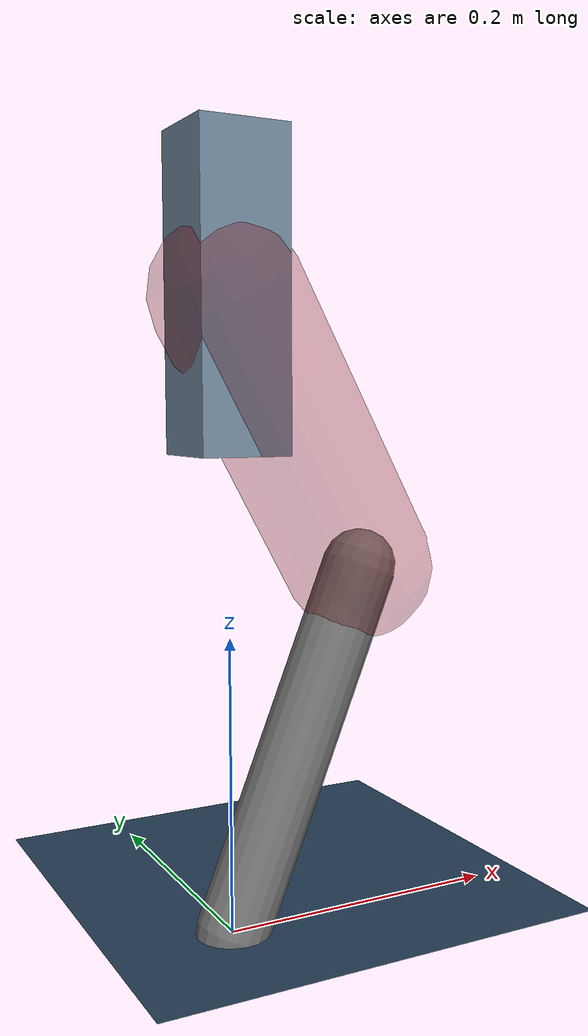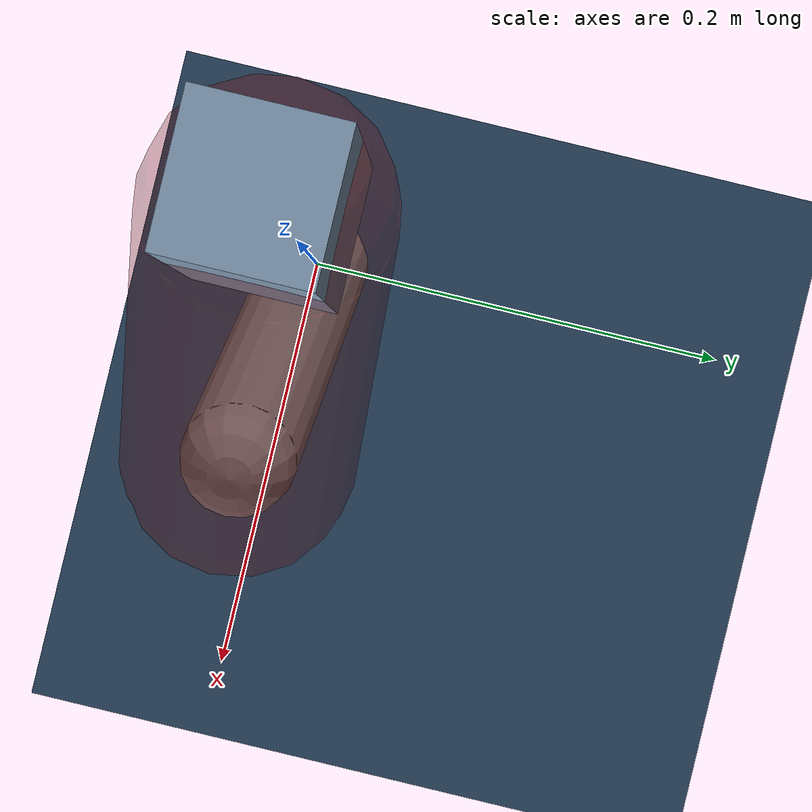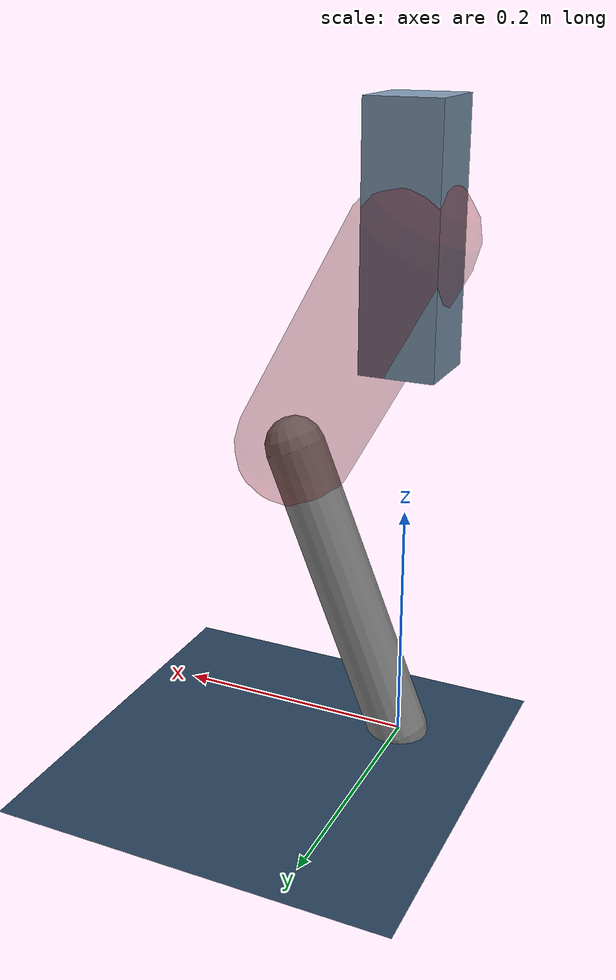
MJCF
<mujoco model="Hopper2D">
	<compiler inertiafromgeom="true" angle="radian" />
	<option timestep="0.001" integrator="implicit" cone="elliptic" solver="Newton" tolerance="1e-10" />

	<default>
		<geom contype="1" conaffinity="1" condim="3" friction="2 0.005 0.0001" solref="0.005 1" />
		<joint limited="true" damping="0.1" />
	</default>

	<asset>
		<texture name="skybox" type="skybox" builtin="gradient" rgb1=".4 .6 .8" rgb2="0 0 0" width="800" height="800" />
		<texture name="grid" type="2d" builtin="checker" rgb1=".1 .2 .3" rgb2=".2 .3 .4" width="300" height="300" mark="edge" markrgb=".2 .3 .4" />
		<material name="ground" texture="grid" texrepeat="1 1" texuniform="true" reflectance="0.1" />
		<material name="leg" rgba="0.5 0.6 0.7 1" />
	</asset>

	<worldbody>

		<geom name="floor" type="plane" size="5 5 0.25" material="ground" />

		<light directional="false" diffuse="0.8 0.8 0.8" specular="0.3 0.3 0.3" pos="0 0 2" dir="0 0 -1" />
		<light mode="targetbodycom" target="base" directional="false" diffuse="0.8 0.8 0.8" specular="0.3 0.3 0.3" pos="0 0 2" dir="0 0 -1" />

		<camera name="fixed" pos="0 -2 1" xyaxes="1 0 0 0 0 1" />
		<camera name="tracking" mode="trackcom" pos="0 -3 1" />

		<body name="root" pos="0 0 0.4183720627481315">
			<joint name="slide_x" type="slide" axis="1 0 0" range="-100 100" />
			<joint name="slide_z" type="slide" axis="0 0 1" range="0 10" />

			<body name="base" pos="0 0 0">
				<geom name="torso" type="box" size="0.03 0.03 0.1" mass="2.575" material="leg" />

				<body name="link1" pos="0 0 0" euler="0 1.0693496669699658 0">
					<joint type="hinge" axis="0 -1 0" pos="0 0 0" name="hinge1" limited="true" range="-3.14 3.14" stiffness="0" damping="0.1" />
					<geom name="thigh" type="capsule" fromto="0 0 0 0.20103304356857188 0 0" size="0.05" rgba="0.5 0 0 0.3" mass="0.7321826089214296" />

					<body name="link2" pos="0.20103304356857188 0 0" euler="0 0.8812408728474267 0">
						<joint type="hinge" axis="0 -1 0" pos="0 0 0" name="hinge2" limited="true" range="-3.14 3.14" stiffness="0" damping="0.1" />
						<geom name="shank" type="capsule" fromto="0 0 0 0.2606631961651478 0 0" size="0.025" mass="0.45129687654863304" />

					</body>
				</body>
			</body>
		</body>
	</worldbody>

	<actuator>
		<motor name="torque1" joint="hinge1" ctrlrange="-29.131662444145007 29.131662444145007" ctrllimited="true" gear="1" />
		<motor name="torque2" joint="hinge2" ctrlrange="-168.62890805808559 168.62890805808559" ctrllimited="true" gear="1" />
	</actuator>
</mujoco>
